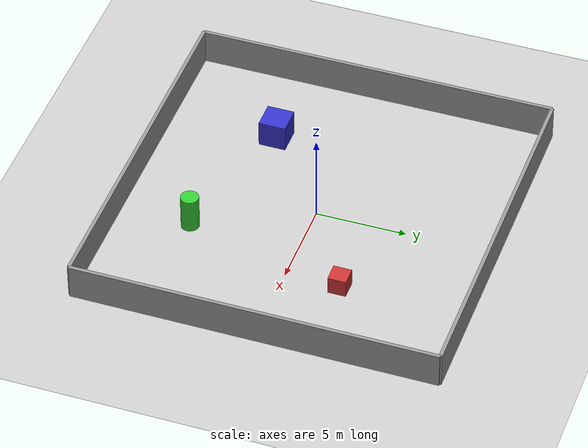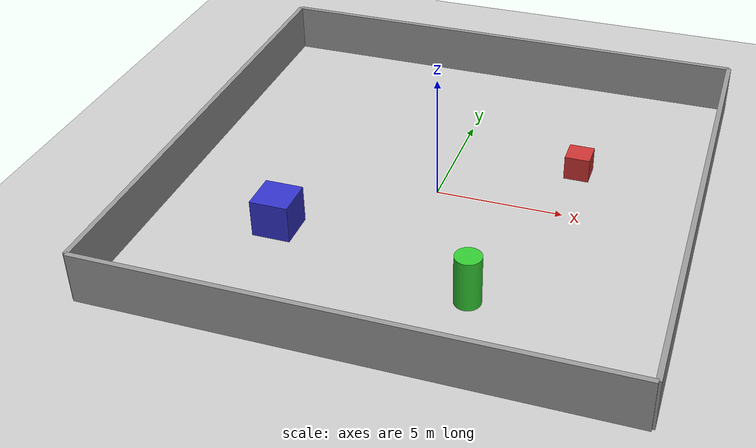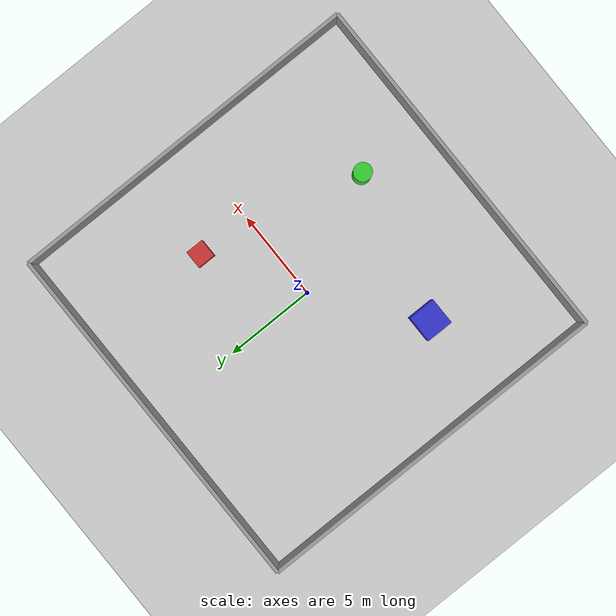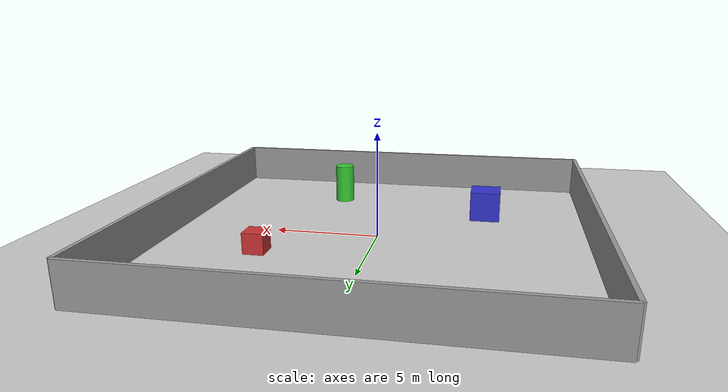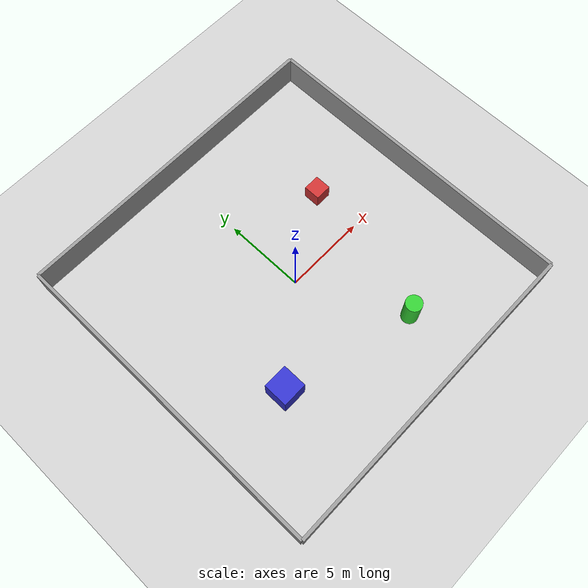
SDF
<?xml version="1.0" ?>
<!--
  Gazebo world for WENS UAV exploration simulation.
  Contains obstacles and walls to create an interesting exploration environment.
-->
<sdf version="1.6">
  <world name="exploration_world">

    <!-- Scene settings -->
    <scene>
      <sky>
        <clouds>
          <speed>12</speed>
        </clouds>
      </sky>
      <ambient>0.4 0.4 0.4 1</ambient>
      <background>0.7 0.7 0.7 1</background>
      <shadows>true</shadows>
    </scene>

    <!-- Physics -->
    <physics name="default_physics" default="0" type="ode">
      <gravity>0 0 -9.8066</gravity>
      <ode>
        <solver>
          <type>quick</type>
          <iters>10</iters>
          <sor>1.3</sor>
          <use_dynamic_moi_rescaling>0</use_dynamic_moi_rescaling>
        </solver>
      </ode>
      <max_step_size>0.004</max_step_size>
      <real_time_factor>1</real_time_factor>
      <real_time_update_rate>250</real_time_update_rate>
    </physics>

    <!-- Sun light -->
    <include>
      <uri>model://sun</uri>
    </include>

    <!-- Ground plane -->
    <include>
      <uri>model://ground_plane</uri>
    </include>

    <!-- Obstacle: Box 1 -->
    <model name="box1">
      <static>true</static>
      <pose>5 3 0.5 0 0 0</pose>
      <link name="link">
        <collision name="collision">
          <geometry><box><size>1 1 1</size></box></geometry>
        </collision>
        <visual name="visual">
          <geometry><box><size>1 1 1</size></box></geometry>
          <material>
            <ambient>0.8 0.2 0.2 1</ambient>
            <diffuse>0.8 0.2 0.2 1</diffuse>
          </material>
        </visual>
      </link>
    </model>

    <!-- Obstacle: Box 2 -->
    <model name="box2">
      <static>true</static>
      <pose>-5 -4 0.75 0 0 0</pose>
      <link name="link">
        <collision name="collision">
          <geometry><box><size>1.5 1.5 1.5</size></box></geometry>
        </collision>
        <visual name="visual">
          <geometry><box><size>1.5 1.5 1.5</size></box></geometry>
          <material>
            <ambient>0.2 0.2 0.8 1</ambient>
            <diffuse>0.2 0.2 0.8 1</diffuse>
          </material>
        </visual>
      </link>
    </model>

    <!-- Obstacle: Cylinder -->
    <model name="cylinder1">
      <static>true</static>
      <pose>3 -6 1 0 0 0</pose>
      <link name="link">
        <collision name="collision">
          <geometry><cylinder><radius>0.5</radius><length>2.0</length></cylinder></geometry>
        </collision>
        <visual name="visual">
          <geometry><cylinder><radius>0.5</radius><length>2.0</length></cylinder></geometry>
          <material>
            <ambient>0.2 0.8 0.2 1</ambient>
            <diffuse>0.2 0.8 0.2 1</diffuse>
          </material>
        </visual>
      </link>
    </model>

    <!-- Wall: North -->
    <model name="wall_north">
      <static>true</static>
      <pose>0 10 1 0 0 0</pose>
      <link name="link">
        <collision name="collision">
          <geometry><box><size>20 0.2 2</size></box></geometry>
        </collision>
        <visual name="visual">
          <geometry><box><size>20 0.2 2</size></box></geometry>
          <material>
            <ambient>0.6 0.6 0.6 1</ambient>
            <diffuse>0.6 0.6 0.6 1</diffuse>
          </material>
        </visual>
      </link>
    </model>

    <!-- Wall: South -->
    <model name="wall_south">
      <static>true</static>
      <pose>0 -10 1 0 0 0</pose>
      <link name="link">
        <collision name="collision">
          <geometry><box><size>20 0.2 2</size></box></geometry>
        </collision>
        <visual name="visual">
          <geometry><box><size>20 0.2 2</size></box></geometry>
          <material>
            <ambient>0.6 0.6 0.6 1</ambient>
            <diffuse>0.6 0.6 0.6 1</diffuse>
          </material>
        </visual>
      </link>
    </model>

    <!-- Wall: East -->
    <model name="wall_east">
      <static>true</static>
      <pose>10 0 1 0 0 1.5708</pose>
      <link name="link">
        <collision name="collision">
          <geometry><box><size>20 0.2 2</size></box></geometry>
        </collision>
        <visual name="visual">
          <geometry><box><size>20 0.2 2</size></box></geometry>
          <material>
            <ambient>0.6 0.6 0.6 1</ambient>
            <diffuse>0.6 0.6 0.6 1</diffuse>
          </material>
        </visual>
      </link>
    </model>

    <!-- Wall: West -->
    <model name="wall_west">
      <static>true</static>
      <pose>-10 0 1 0 0 1.5708</pose>
      <link name="link">
        <collision name="collision">
          <geometry><box><size>20 0.2 2</size></box></geometry>
        </collision>
        <visual name="visual">
          <geometry><box><size>20 0.2 2</size></box></geometry>
          <material>
            <ambient>0.6 0.6 0.6 1</ambient>
            <diffuse>0.6 0.6 0.6 1</diffuse>
          </material>
        </visual>
      </link>
    </model>

  </world>
</sdf>
